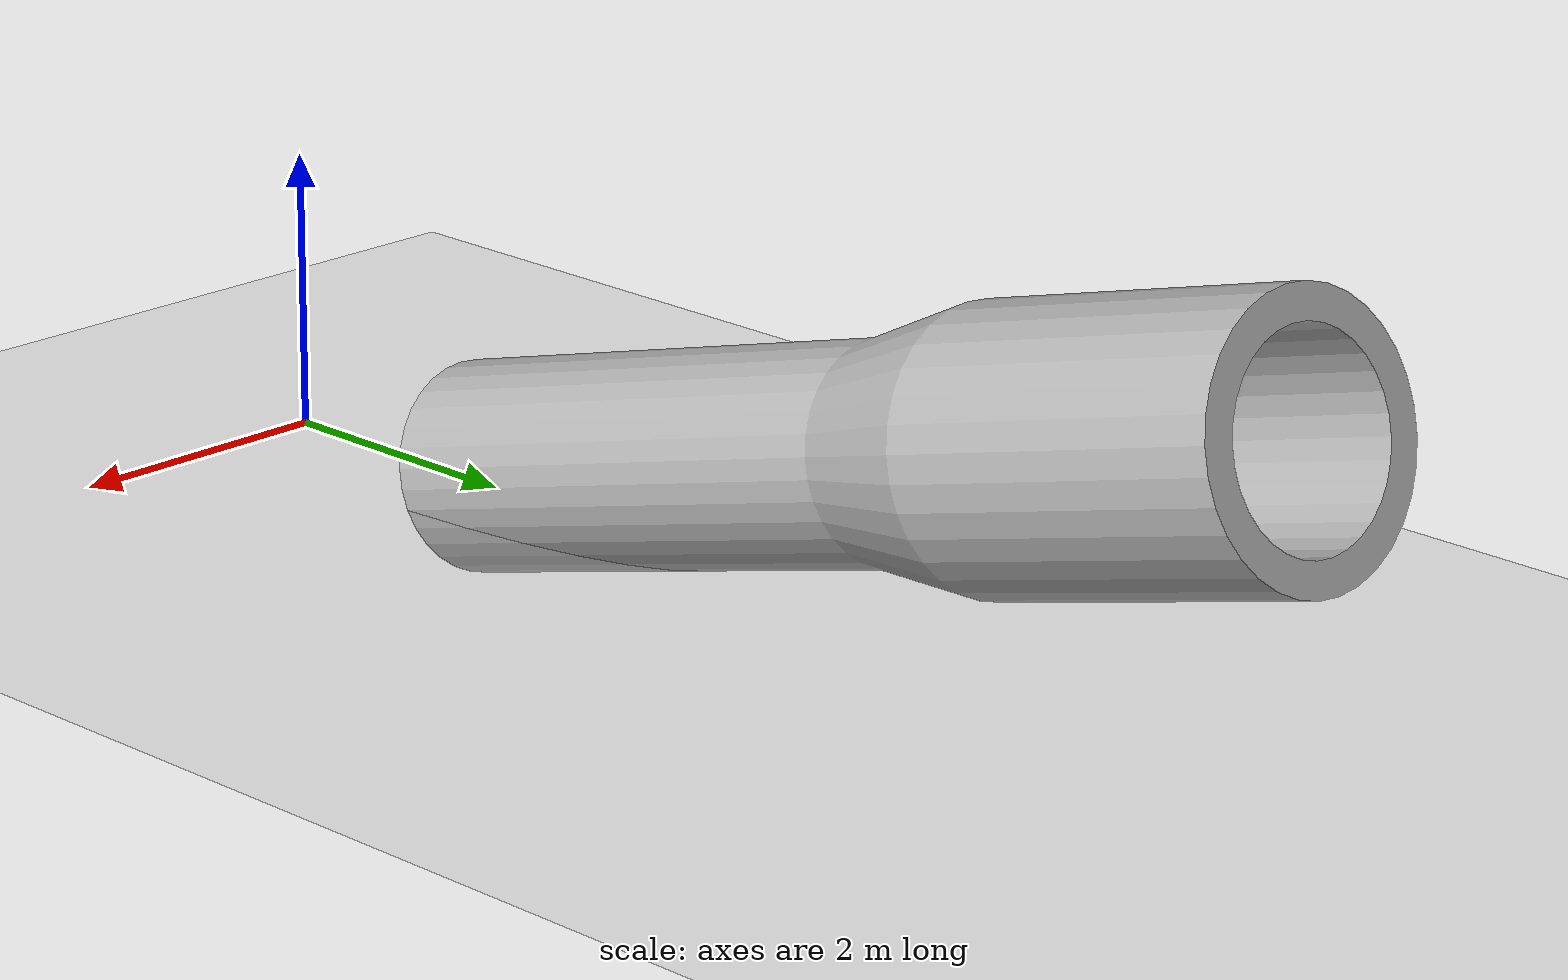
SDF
<?xml version="1.0" ?>
<sdf version="1.4">
  <world name="default">

    <!-- A gravity force -->
    <physics type='ode'>
      <gravity>0 0 -9.81</gravity>
      <real_time_update_rate>1000.0</real_time_update_rate>
      <!-- max step size has to be a multiple of the desired task rate-->
      <max_step_size>0.001</max_step_size>
      <real_time_factor>1</real_time_factor>

    </physics>

    <!-- A global light source -->
    <include>
      <uri>model://sun</uri>
    </include>

    <!-- A ground plane -->
    <include>
      <uri>model://ground_plane</uri>
    </include>

    <!-- A tunnel -->
    <include>
      <name>tunnel</name>
      <uri>model://tunnel</uri>
    </include>

  </world>
</sdf>

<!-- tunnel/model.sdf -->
<sdf version="1.4">

<model name="tunnel">
        <static>true</static>
	<link name="link">

	<!-- location of the tunnel inside the world -->
	<pose>0. -1. 0.0 0 0 0</pose>
		<collision name="collision">
			<geometry>
		    	    <mesh>
		    	        <!-- scaling for better fit the robot model -->
				<uri>model://tunnel/mesh/gasdotto.stl</uri>
				<scale>1. 1. 1.</scale>
			    </mesh>
			</geometry>
		</collision>

		<visual name="visual">
			<geometry>
			    <mesh>
				<uri>model://tunnel/mesh/gasdotto.stl</uri>
				<scale>1. 1. 1. </scale>
			    </mesh>
			</geometry>
		</visual>
	</link>
</model>
</sdf>
